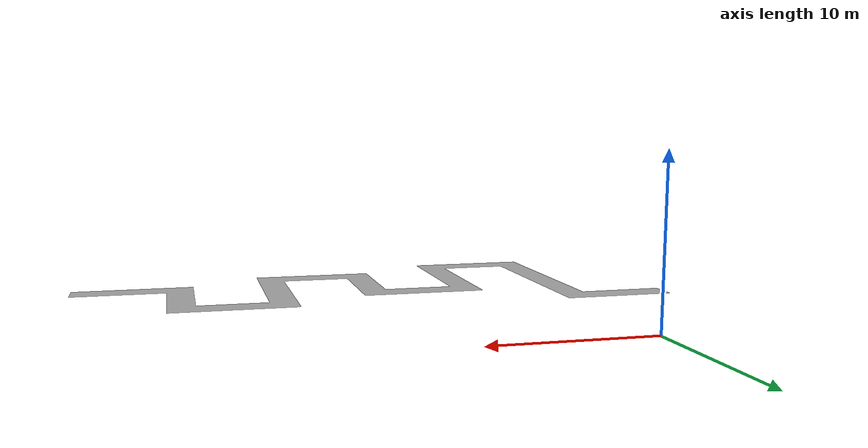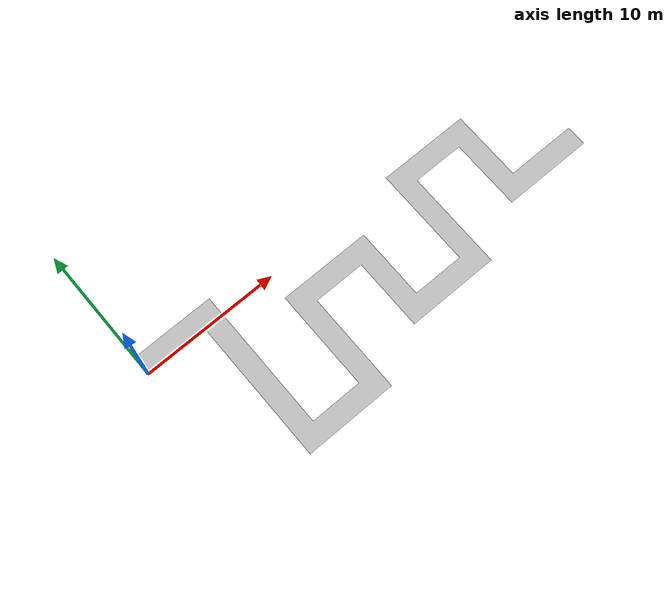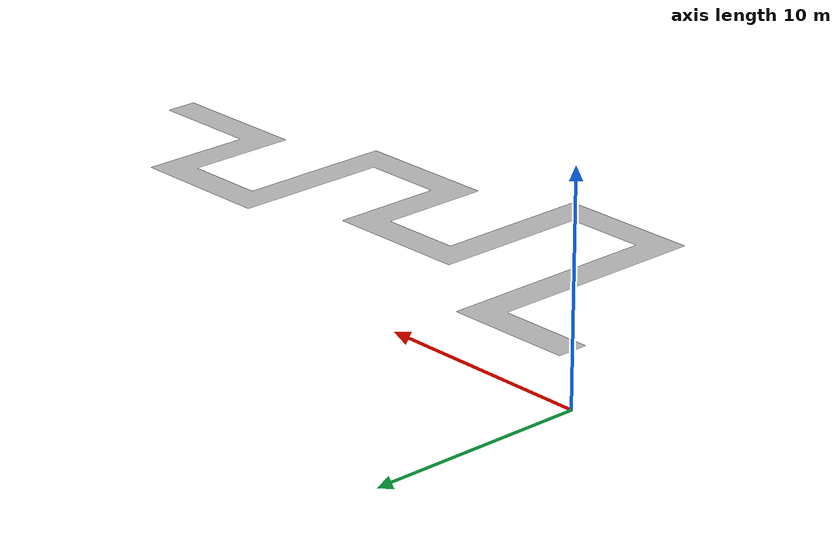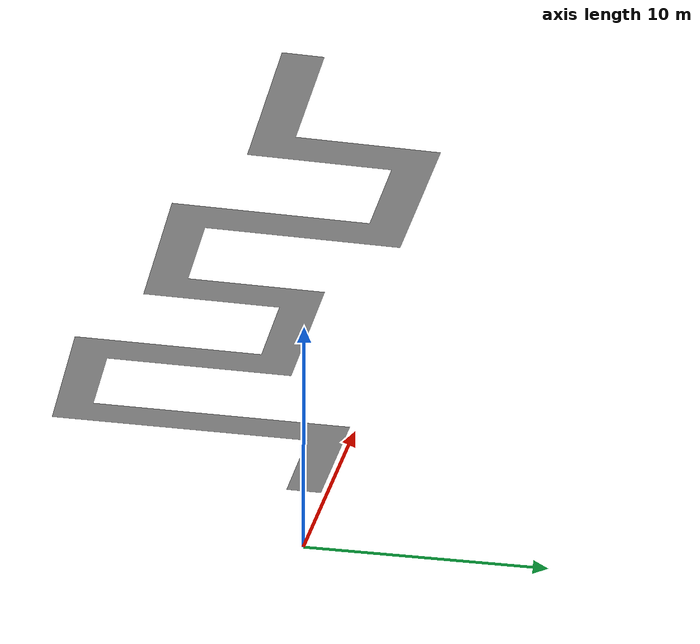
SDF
<?xml version="1.0" ?>
<sdf version='1.5'>
<model name='roof_first'>
<static>true</static>
<link name="link">
   <pose frame=''>0 0 -0.01 0 0 0</pose>
  <visual name='roof_firstV'>
    <cast_shadows>false</cast_shadows>
    <geometry>
      <mesh>
        <scale>1.0 -1.0 1.0</scale>
        <uri>model://roof_first/roof.dae</uri>
      </mesh>
    </geometry>
  </visual>
</link>
</model>
</sdf>
